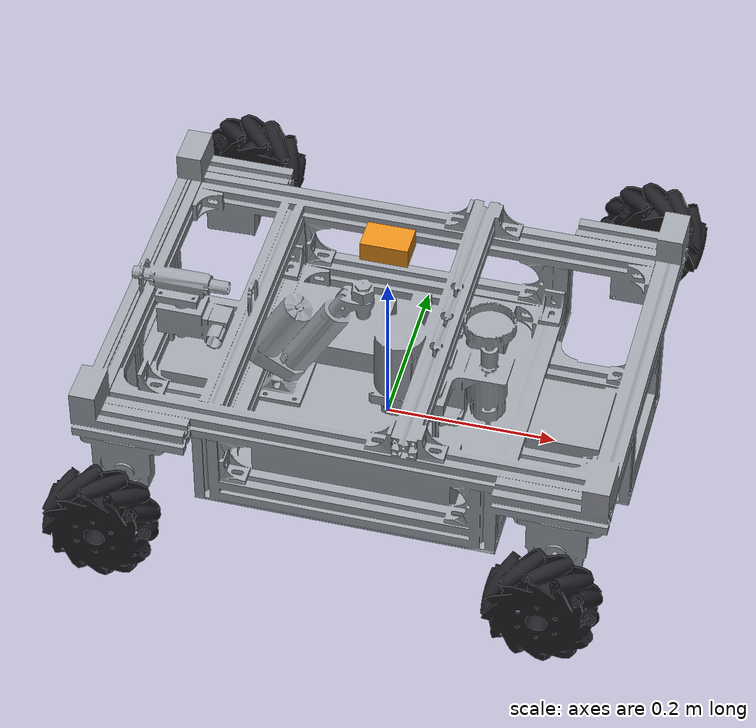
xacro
<?xml version="1.0"?>
<robot xmlns:xacro="http://www.ros.org/wiki/xacro" name="mdrobot">

  <!-- Kinematic geometry. Defaults match mdrobot_supervisor/config/supervisor.yaml. -->
  <xacro:arg name="wheel_radius" default="0.0625"/>
  <xacro:arg name="track" default="0.575"/>
  <xacro:arg name="wheelbase" default="0.5"/>

  <xacro:property name="wheel_radius" value="$(arg wheel_radius)"/>
  <xacro:property name="track" value="$(arg track)"/>
  <xacro:property name="wheelbase" value="$(arg wheelbase)"/>

  <!-- Placeholder sizes, used only when a mesh is not supplied. -->
  <xacro:property name="wheel_width" value="0.085"/>
  <xacro:property name="body_length" value="0.512"/>
  <xacro:property name="body_width" value="0.610"/>
  <xacro:property name="body_height" value="0.189"/>

  <xacro:arg name="body_mesh" default="package://mdrobot_description/meshes/body.stl"/>
  <xacro:arg name="wheel_mesh_left"
             default="package://mdrobot_description/meshes/wheel.stl"/>
  <xacro:arg name="wheel_mesh_right"
             default="package://mdrobot_description/meshes/wheel_mirror.stl"/>
  <xacro:arg name="mesh_scale" default="0.001 0.001 0.001"/>
  <!-- Rotation about ROS z applied AFTER standing the CAD frame up. See the
       note above: settled by driving the machine, not by reading the files. -->
  <xacro:arg name="body_yaw_deg" default="270"/>
  <xacro:arg name="wheel_yaw_deg" default="0"/>
  <xacro:property name="body_yaw" value="${radians($(arg body_yaw_deg))}"/>
  <xacro:property name="wheel_yaw" value="${radians($(arg wheel_yaw_deg))}"/>
  <xacro:property name="body_mesh" value="$(arg body_mesh)"/>
  <xacro:property name="wheel_mesh_left" value="$(arg wheel_mesh_left)"/>
  <xacro:property name="wheel_mesh_right" value="$(arg wheel_mesh_right)"/>

  <!-- Assembly-coordinate offsets, in metres, from mesh_check. -->
  <xacro:property name="body_cx" value="0.256714"/>
  <xacro:property name="body_cz" value="0.305300"/>
  <xacro:property name="ground_y" value="0.009787"/>
  <xacro:property name="wheel_cx" value="0.074291"/>
  <xacro:property name="wheel_cy" value="0.074230"/>
  <xacro:property name="wheel_cz" value="0.107614"/>

  <material name="body"><color rgba="0.62 0.64 0.67 1.0"/></material>
  <material name="rubber"><color rgba="0.13 0.13 0.15 1.0"/></material>
  <material name="sensor"><color rgba="0.90 0.55 0.10 1.0"/></material>

  <link name="base_link">
    <visual>
      <xacro:if value="${body_mesh == ''}">
        <origin xyz="0 0 ${wheel_radius + body_height/2}"/>
        <geometry>
          <box size="${body_length} ${body_width} ${body_height}"/>
        </geometry>
      </xacro:if>
      <xacro:unless value="${body_mesh == ''}">
        <origin rpy="${pi/2} 0 ${body_yaw}"
                xyz="${-(body_cx*cos(body_yaw) + body_cz*sin(body_yaw))}
                     ${-(body_cx*sin(body_yaw) - body_cz*cos(body_yaw))}
                     ${-ground_y}"/>
        <geometry>
          <mesh filename="${body_mesh}" scale="$(arg mesh_scale)"/>
        </geometry>
      </xacro:unless>
      <material name="body"/>
    </visual>
  </link>

  <xacro:macro name="wheel" params="name x y mesh">
    <link name="${name}_wheel">
      <visual>
        <xacro:if value="${mesh == ''}">
          <!-- Cylinders are built along z; the axle runs along y. -->
          <origin rpy="${pi/2} 0 0"/>
          <geometry>
            <cylinder radius="${wheel_radius}" length="${wheel_width}"/>
          </geometry>
        </xacro:if>
        <xacro:unless value="${mesh == ''}">
          <origin rpy="${pi/2} 0 ${wheel_yaw}"
                  xyz="${-(wheel_cx*cos(wheel_yaw) + wheel_cz*sin(wheel_yaw))}
                       ${-(wheel_cx*sin(wheel_yaw) - wheel_cz*cos(wheel_yaw))}
                       ${-wheel_cy}"/>
          <geometry>
            <mesh filename="${mesh}" scale="$(arg mesh_scale)"/>
          </geometry>
        </xacro:unless>
        <material name="rubber"/>
      </visual>
    </link>
    <joint name="${name}" type="continuous">
      <parent link="base_link"/>
      <child link="${name}_wheel"/>
      <origin xyz="${x} ${y} ${wheel_radius}"/>
      <axis xyz="0 1 0"/>
    </joint>
  </xacro:macro>

  <!-- Joint names are the WHEEL_NAMES the whole workspace uses. Rename one and
       robot_state_publisher silently stops turning that wheel. -->
  <xacro:wheel name="front_left"  x="${ wheelbase/2}" y="${ track/2}" mesh="${wheel_mesh_left}"/>
  <xacro:wheel name="front_right" x="${ wheelbase/2}" y="${-track/2}" mesh="${wheel_mesh_right}"/>
  <xacro:wheel name="rear_left"   x="${-wheelbase/2}" y="${ track/2}" mesh="${wheel_mesh_left}"/>
  <xacro:wheel name="rear_right"  x="${-wheelbase/2}" y="${-track/2}" mesh="${wheel_mesh_right}"/>

  <link name="imu_link">
    <visual>
      <geometry><box size="0.055 0.037 0.024"/></geometry>
      <material name="sensor"/>
    </visual>
  </link>
  <joint name="imu_mount" type="fixed">
    <parent link="base_link"/>
    <child link="imu_link"/>
    <origin xyz="0 0 ${wheel_radius + body_height + 0.012}"/>
  </joint>

</robot>
